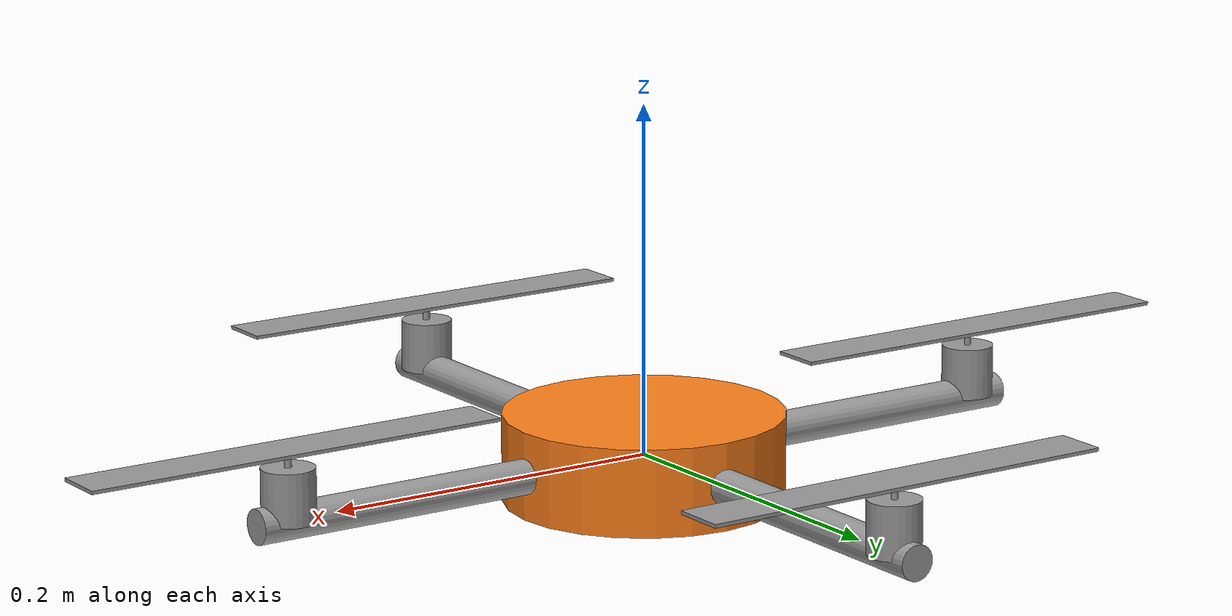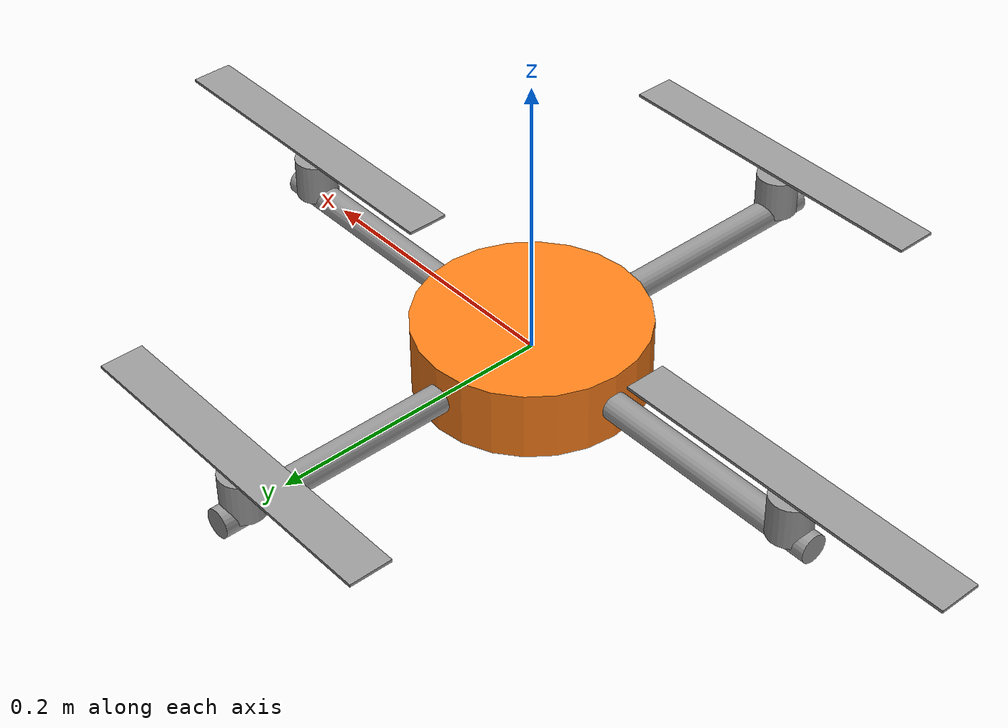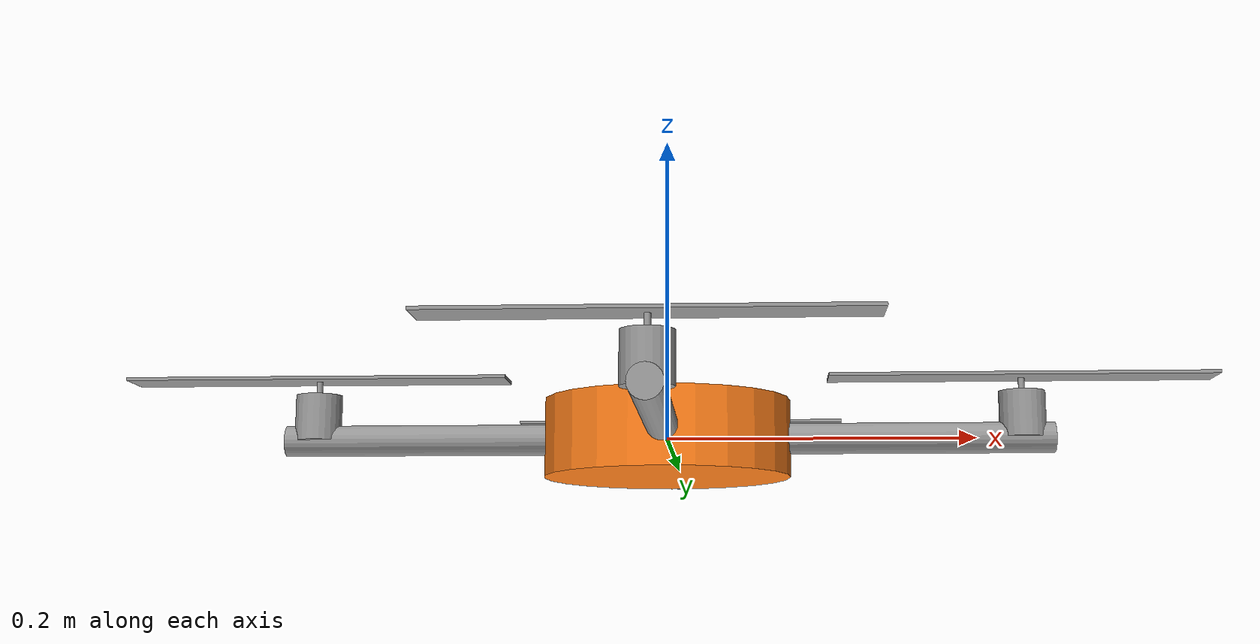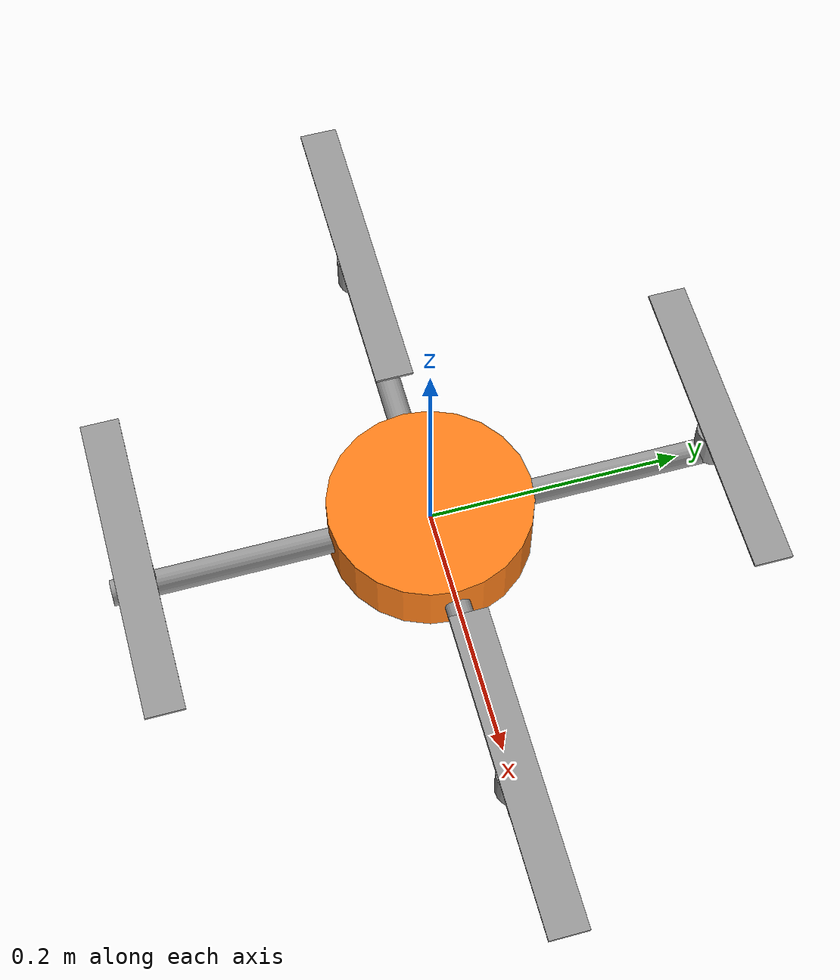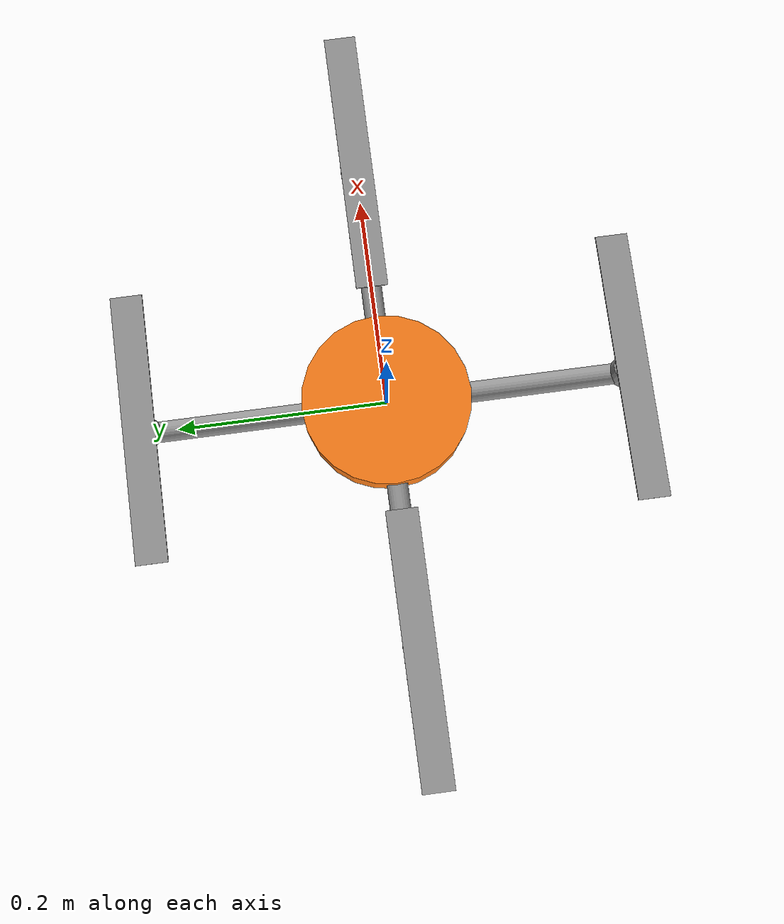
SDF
<?xml version="1.0" ?>
<sdf version="1.5">
<model name="mrsim-quadrotor">
    <link name="base">
        <inertial>
            <mass>1.39</mass>
            <inertia>
                <ixx>0.015</ixx><ixy>0</ixy><ixz>0</ixz>
                <iyy>0.015</iyy><iyz>0</iyz>
                <izz>0.007</izz>
            </inertia>
        </inertial>

        <collision name="body">
            <geometry>
                <cylinder><radius>0.08</radius><length>0.05</length></cylinder>
            </geometry>
        </collision>

        <!-- three spheres to make contact stable -->
        <collision name="land_1">
            <pose>0.1 0 0 0 0 0</pose>
            <geometry>
                <sphere><radius>0.03</radius></sphere>
            </geometry>
        </collision>
        <collision name="land_2">
            <pose>-0.05 0.086 0 0 0 0</pose>
            <geometry>
                <sphere><radius>0.03</radius></sphere>
            </geometry>
        </collision>
        <collision name="land_3">
            <pose>-0.05 -0.086 0 0 0 0</pose>
            <geometry>
                <sphere><radius>0.03</radius></sphere>
            </geometry>
        </collision>

        <!-- contact for the arms -->
        <collision name="arm_1">
            <pose>0.125 0 0 0 1.5708 0</pose>
            <geometry>
                <cylinder><radius>0.01</radius><length>0.25</length></cylinder>
            </geometry>
        </collision>
        <collision name="arm_2">
            <pose>0 0.125 0 0 1.5708 1.5708</pose>
            <geometry>
                <cylinder><radius>0.01</radius><length>0.25</length></cylinder>
            </geometry>
        </collision>
        <collision name="arm_3">
            <pose>-0.125 0 0 0 1.5708 0</pose>
            <geometry>
                <cylinder><radius>0.01</radius><length>0.25</length></cylinder>
            </geometry>
        </collision>
        <collision name="arm_4">
            <pose>0 -0.125 0 0 1.5708 1.5708</pose>
            <geometry>
                <cylinder><radius>0.01</radius><length>0.25</length></cylinder>
            </geometry>
        </collision>

        <visual name="body">
            <geometry>
                <cylinder><radius>0.08</radius><length>0.05</length></cylinder>
            </geometry>
            <material>
                <diffuse>1.0 0.5 0.1 1</diffuse>
            </material>
        </visual>
        <visual name="arm-1">
            <pose>0.125 0 0 0 1.5708 0</pose>
            <geometry>
                <cylinder><radius>0.01</radius><length>0.25</length></cylinder>
            </geometry>
            <material>
                <diffuse>0.6 0.6 0.6 1</diffuse>
            </material>
        </visual>
        <visual name="arm-2">
            <pose>0 0.125 0 0 1.5708 1.5708</pose>
            <geometry>
                <cylinder><radius>0.01</radius><length>0.25</length></cylinder>
            </geometry>
            <material>
                <diffuse>0.6 0.6 0.6 1</diffuse>
            </material>
        </visual>
        <visual name="arm-3">
            <pose>-0.125 0 0 0 1.5708 0</pose>
            <geometry>
                <cylinder><radius>0.01</radius><length>0.25</length></cylinder>
            </geometry>
            <material>
                <diffuse>0.6 0.6 0.6 1</diffuse>
            </material>
        </visual>
        <visual name="arm-4">
            <pose>0 -0.125 0 0 1.5708 1.5708</pose>
            <geometry>
                <cylinder><radius>0.01</radius><length>0.25</length></cylinder>
            </geometry>
            <material>
                <diffuse>0.6 0.6 0.6 1</diffuse>
            </material>
        </visual>
    </link>

    <include>
        <uri>model://mrsim-rotor</uri>
        <name>rotor_1</name>
        <pose>0.23 0 0 0 0 0</pose>
    </include>
    <joint name="joint_rotor_1" type="revolute">
        <parent>base</parent>
        <child>rotor_1::propeller</child>
        <axis><xyz>0 0 1</xyz></axis>
    </joint>

    <include>
        <uri>model://mrsim-rotor</uri>
        <name>rotor_2</name>
        <pose>0 0.23 0 0 0 0</pose>
    </include>
    <joint name="joint_rotor_2" type="revolute">
        <parent>base</parent>
        <child>rotor_2::propeller</child>
        <axis><xyz>0 0 1</xyz></axis>
    </joint>

    <include>
        <uri>model://mrsim-rotor</uri>
        <name>rotor_3</name>
        <pose>-0.23 0 0 0 0 0</pose>
    </include>
    <joint name="joint_rotor_3" type="revolute">
        <parent>base</parent>
        <child>rotor_3::propeller</child>
        <axis><xyz>0 0 1</xyz></axis>
    </joint>

    <include>
        <uri>model://mrsim-rotor</uri>
        <name>rotor_4</name>
        <pose>0 -0.23 0 0 0 0</pose>
    </include>
    <joint name="joint_rotor_4" type="revolute">
        <parent>base</parent>
        <child>rotor_4::propeller</child>
        <axis><xyz>0 0 1</xyz></axis>
    </joint>

    <plugin name="mrsim" filename="mrsim-gazebo-2.0.so">
        <link>base</link>
        <rotors>
            <noise>0.03</noise>
            <cf>5.9e-4</cf>
            <ct>1e-5</ct>
            <rotor><joint spin="cw">joint_rotor_1</joint></rotor>
            <rotor><joint spin="ccw">joint_rotor_2</joint></rotor>
            <rotor><joint spin="cw">joint_rotor_3</joint></rotor>
            <rotor><joint spin="ccw">joint_rotor_4</joint></rotor>
        </rotors>
    </plugin>
</model>
</sdf>

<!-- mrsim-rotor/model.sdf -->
<sdf version="1.5">
  <model name="mrsim-rotor">
    <link name="propeller">
      <gravity>0</gravity>
      <inertial>
        <mass>0.07</mass>
        <inertia>
          <ixx>4e-5</ixx><ixy>0</ixy><ixz>0</ixz>
          <iyy>4e-5</iyy><iyz>0</iyz>
          <izz>8e-5</izz>
        </inertia>
      </inertial>

      <collision name="collision">
        <pose>0 0 0.04 0 0 0</pose>
        <geometry>
          <cylinder><radius>0.127</radius><length>0.002</length></cylinder>
        </geometry>
      </collision>

      <visual name="motor">
        <pose>0 0 0.015 0 0 0</pose>
        <geometry>
          <cylinder><radius>0.015</radius><length>0.03</length></cylinder>
        </geometry>
        <material>
          <diffuse>0.6 0.6 0.6 1</diffuse>
        </material>
      </visual>

      <visual name="axle">
        <pose>0 0 0.035 0 0 0</pose>
        <geometry>
          <cylinder><radius>0.002</radius><length>0.01</length></cylinder>
        </geometry>
        <material>
          <diffuse>0.6 0.6 0.6 1</diffuse>
        </material>
      </visual>

      <visual name="blade">
        <pose>0 0 0.04 0 0 0</pose>
        <geometry>
          <box><size>0.25 0.03 0.002</size></box>
        </geometry>
        <material>
          <diffuse>0.6 0.6 0.6 1</diffuse>
        </material>
      </visual>
    </link>
  </model>
</sdf>
